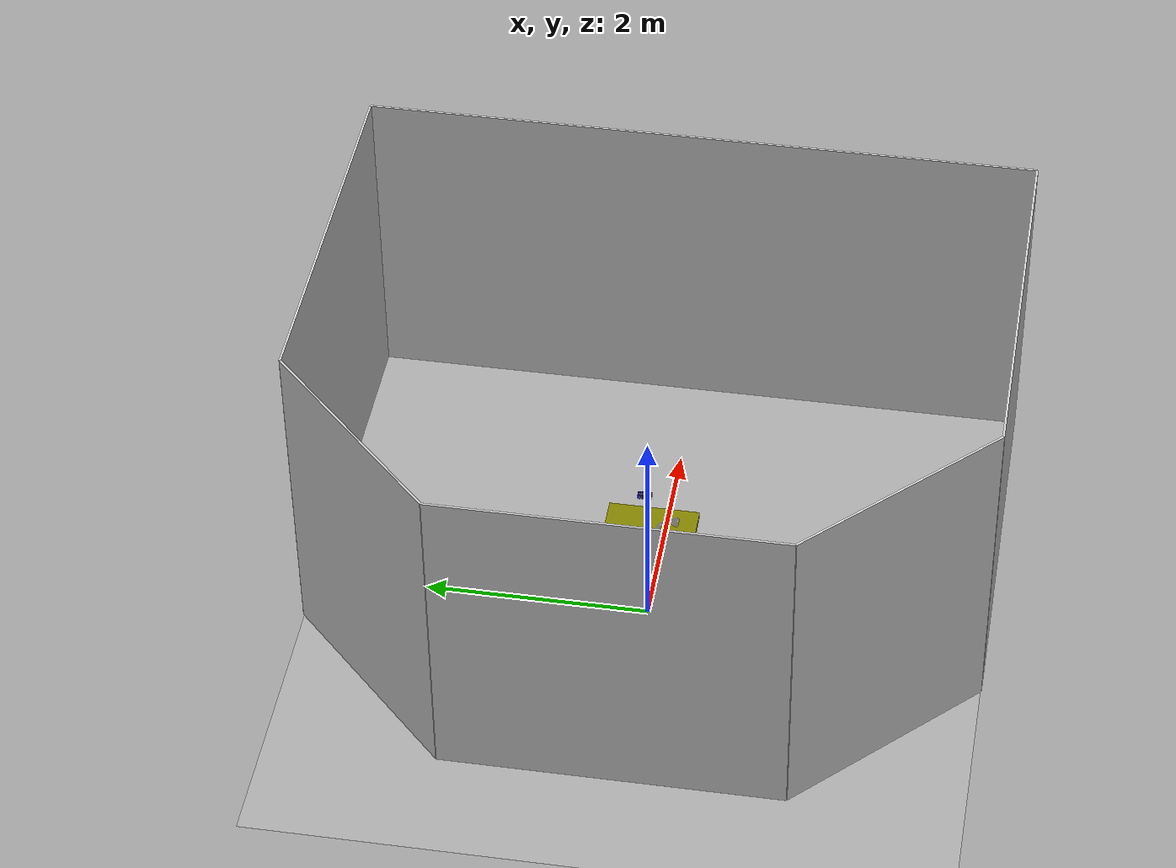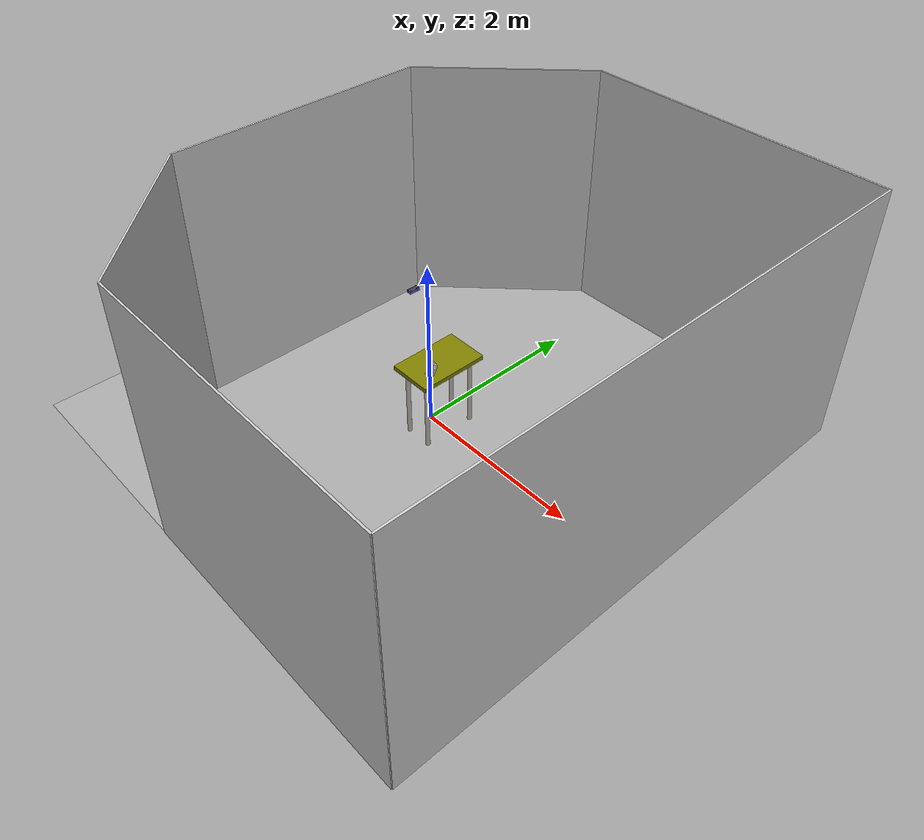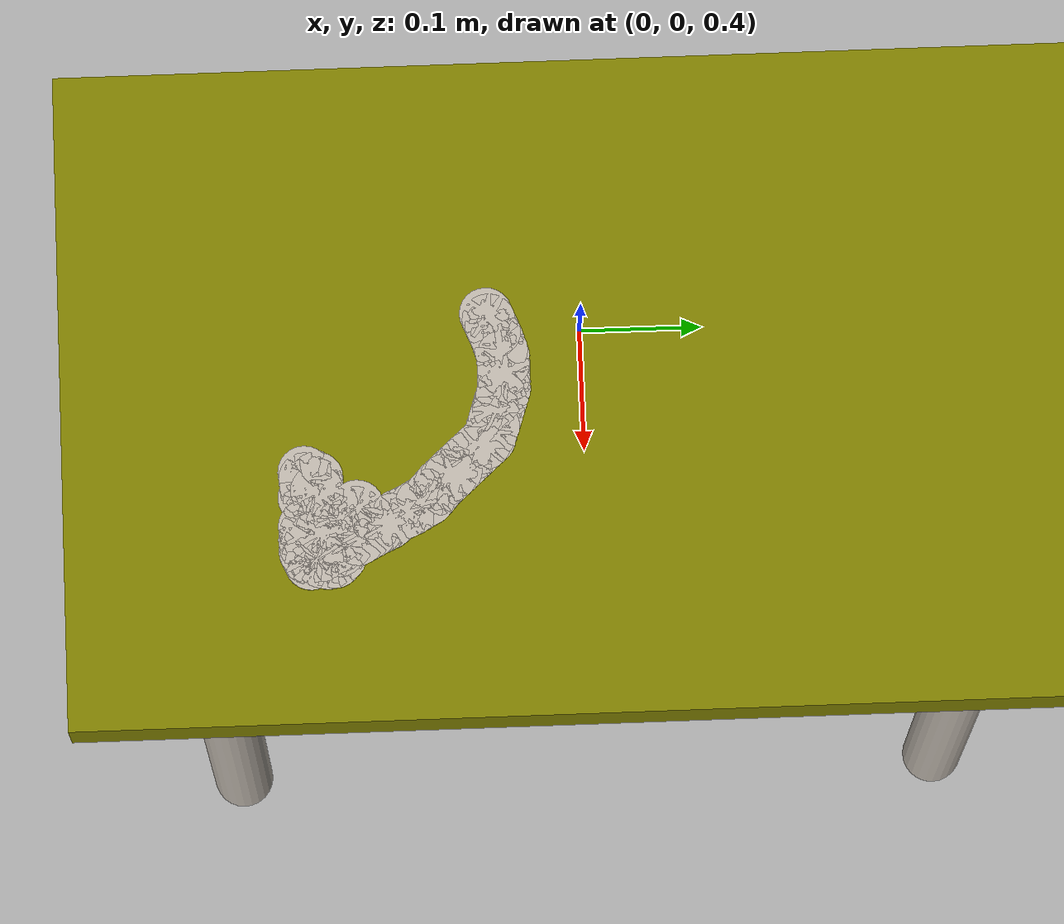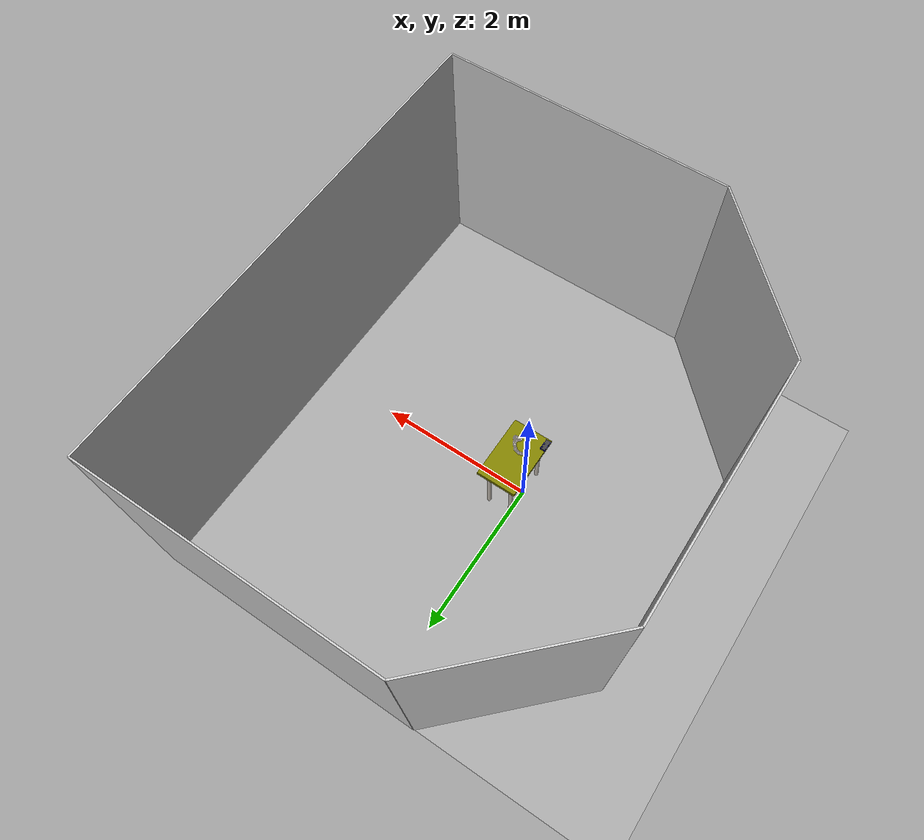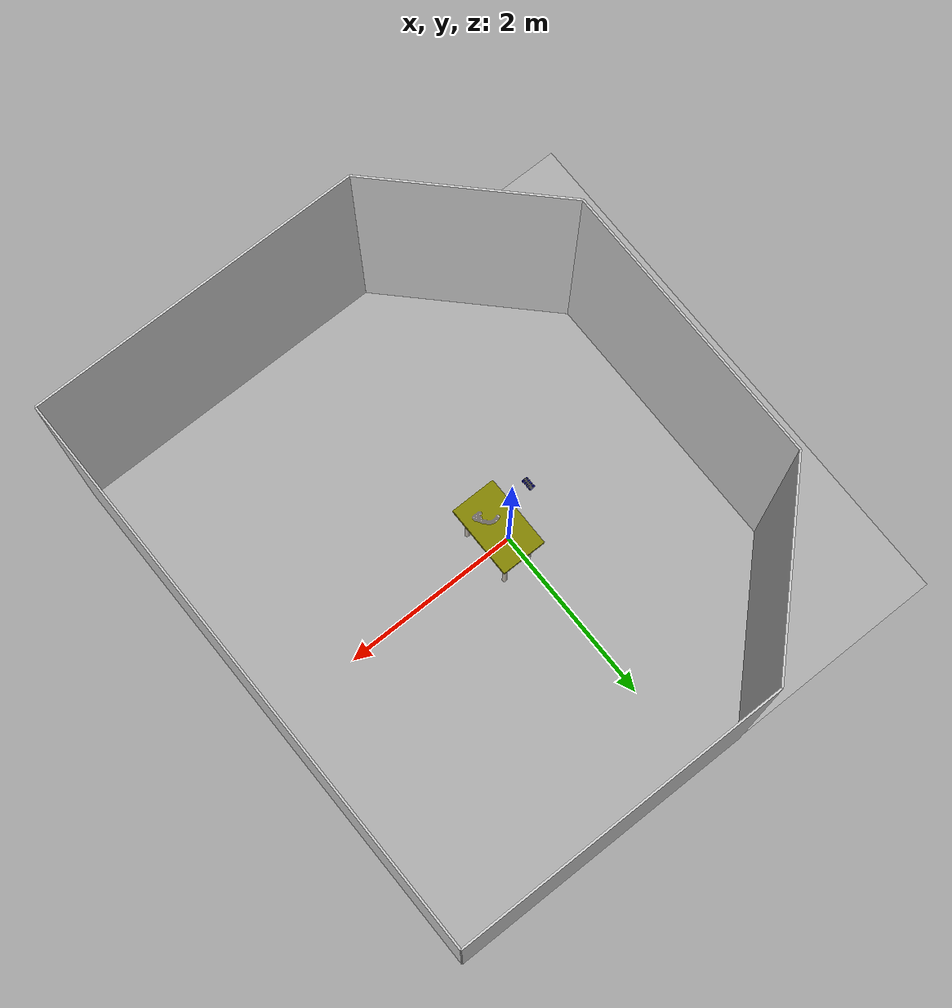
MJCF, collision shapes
<mujoco model="base">
  <compiler angle="radian" meshdir="meshes/"/>

  <option impratio="20" density="1.2" viscosity="2e-05" cone="elliptic"/>

  <size njmax="5000" nconmax="5000"/>

  <visual>
    <map znear="0.001"/>
  </visual>

  <asset>
    <texture type="skybox" colorspace="auto" builtin="gradient" rgb1="0.9 0.9 1" rgb2="0.2 0.3 0.4" width="256" height="1536"/>
    <texture type="2d" colorspace="sRGB" name="texplane" file="/home/cobot/Desktop/Raja/Projects/robosuite/robosuite/models/assets/textures/light-gray-floor-tile.png"/>
    <texture type="cube" colorspace="linear" name="tex-ceramic" file="/home/cobot/Desktop/Raja/Projects/robosuite/robosuite/models/assets/textures/ceramic.png"/>
    <texture type="cube" colorspace="linear" name="tex-steel-brushed" file="/home/cobot/Desktop/Raja/Projects/robosuite/robosuite/models/assets/textures/steel-brushed.png"/>
    <texture type="2d" colorspace="linear" name="tex-light-gray-plaster" file="/home/cobot/Desktop/Raja/Projects/robosuite/robosuite/models/assets/textures/light-gray-plaster.png"/>
    <texture type="cube" colorspace="auto" name="textable" builtin="flat" rgb1="0.5 0.5 0.5" width="512" height="3072"/>
    <texture type="cube" colorspace="linear" name="dirt" file="/home/cobot/Desktop/Raja/Projects/robosuite/robosuite/models/assets/textures/dirt.png"/>
    <material name="floorplane" texture="texplane" texuniform="true" texrepeat="2 2" specular="0" shininess="0" reflectance="0.01"/>
    <material name="table_ceramic" texture="tex-ceramic" specular="0.2" shininess="0"/>
    <material name="table_legs_metal" texture="tex-steel-brushed" shininess="0.8" reflectance="0.8"/>
    <material name="walls_mat" texture="tex-light-gray-plaster" texuniform="true" texrepeat="3 3" specular="0.1" shininess="0.1"/>
    <material name="table_mat" texture="textable"/>
    <material name="dirt_mat" texture="dirt" specular="0" shininess="0"/>
    <material name="robot0_robot_grey" rgba="0.6 0.6 0.6 1"/>
    <material name="robot0_white"/>
    <material name="robot0_black" rgba="0.25 0.25 0.25 1"/>
    <material name="robot0_off_white" rgba="0.9 0.92 0.93 1"/>
    <mesh name="robot0_base_link" file="/home/cobot/Desktop/Raja/Projects/robosuite/robosuite/models/assets/robots/nero/meshes/base_link.stl"/>
    <mesh name="robot0_link1" file="/home/cobot/Desktop/Raja/Projects/robosuite/robosuite/models/assets/robots/nero/meshes/link1.stl"/>
    <mesh name="robot0_link2" file="/home/cobot/Desktop/Raja/Projects/robosuite/robosuite/models/assets/robots/nero/meshes/link2.stl"/>
    <mesh name="robot0_link3" file="/home/cobot/Desktop/Raja/Projects/robosuite/robosuite/models/assets/robots/nero/meshes/link3.stl"/>
    <mesh name="robot0_link4" file="/home/cobot/Desktop/Raja/Projects/robosuite/robosuite/models/assets/robots/nero/meshes/link4.stl"/>
    <mesh name="robot0_link5" file="/home/cobot/Desktop/Raja/Projects/robosuite/robosuite/models/assets/robots/nero/meshes/link5.stl"/>
    <mesh name="robot0_link6" file="/home/cobot/Desktop/Raja/Projects/robosuite/robosuite/models/assets/robots/nero/meshes/link6.stl"/>
    <mesh name="robot0_link7" file="/home/cobot/Desktop/Raja/Projects/robosuite/robosuite/models/assets/robots/nero/meshes/link7.stl"/>
  </asset>

  <worldbody>
    <geom name="floor" size="3 3 0.125" type="plane" group="1" material="floorplane"/>
    <geom name="wall_leftcorner_visual" size="1.06 1.5 0.01" pos="-1.25 2.25 1.5" quat="0.653281 0.653281 0.270598 0.270598" type="box" contype="0" conaffinity="0" group="1" material="walls_mat"/>
    <geom name="wall_rightcorner_visual" size="1.06 1.5 0.01" pos="-1.25 -2.25 1.5" quat="0.653281 0.653281 -0.270598 -0.270598" type="box" contype="0" conaffinity="0" group="1" material="walls_mat"/>
    <geom name="wall_left_visual" size="1.75 1.5 0.01" pos="1.25 3 1.5" quat="0.707107 0.707107 0 0" type="box" contype="0" conaffinity="0" group="1" material="walls_mat"/>
    <geom name="wall_right_visual" size="1.75 1.5 0.01" pos="1.25 -3 1.5" quat="0.707107 -0.707107 0 0" type="box" contype="0" conaffinity="0" group="1" material="walls_mat"/>
    <geom name="wall_rear_visual" size="1.5 1.5 0.01" pos="-2 0 1.5" quat="0.5 0.5 0.5 0.5" type="box" contype="0" conaffinity="0" group="1" material="walls_mat"/>
    <geom name="wall_front_visual" size="3 1.5 0.01" pos="3 0 1.5" quat="0.5 0.5 -0.5 -0.5" type="box" contype="0" conaffinity="0" group="1" material="walls_mat"/>
    <camera name="frontview" pos="1.6 0 1.45" quat="0.560842 0.430646 0.430646 0.560842"/>
    <camera name="topview" pos="-0.03 0 2" quat="-0.707107 0 0 0.707107"/>
    <camera name="agentview" pos="0.5 0 1.35" quat="0.653098 0.271041 0.271041 0.653098"/>
    <camera name="sideview" pos="-0.0565177 1.27612 1.48796" quat="0.00990507 0.00687796 0.591223 0.806418"/>
    <camera name="teleopview" pos="-0.3 0.1 1.2" quat="0.583833 0.399104 -0.399421 -0.583368"/>
    <light pos="1 1 1.5" dir="-0.19245 -0.19245 -0.96225" type="directional" castshadow="false"/>
    <body name="table" pos="0.15 0 0.875">
      <geom name="table_collision" size="0.25 0.4 0.025" type="box" friction="0.03" rgba="0.5 0.5 0 1"/>
      <geom name="table_visual" size="0.25 0.4 0.025" type="box" contype="0" conaffinity="0" group="1" material="table_ceramic"/>
      <geom name="table_leg1_visual" size="0.025 0.4375" pos="0.15 0.3 -0.4375" type="cylinder" contype="0" conaffinity="0" group="1" material="table_legs_metal"/>
      <geom name="table_leg2_visual" size="0.025 0.4375" pos="-0.15 0.3 -0.4375" type="cylinder" contype="0" conaffinity="0" group="1" material="table_legs_metal"/>
      <geom name="table_leg3_visual" size="0.025 0.4375" pos="-0.15 -0.3 -0.4375" type="cylinder" contype="0" conaffinity="0" group="1" material="table_legs_metal"/>
      <geom name="table_leg4_visual" size="0.025 0.4375" pos="0.15 -0.3 -0.4375" type="cylinder" contype="0" conaffinity="0" group="1" material="table_legs_metal"/>
      <site name="table_top" pos="0 0 0.025" size="0.001" rgba="0 0 0 0"/>
      <body name="contact0_main" pos="0.0874314 -0.180404 0.025">
        <geom name="contact0_g0_vis" size="0.02 0.001" type="cylinder" contype="0" conaffinity="0" group="1" mass="0" material="dirt_mat"/>
        <site name="contact0_default_site" pos="0 0 0" size="0.002" rgba="1 0 0 0"/>
      </body>
      <body name="contact1_main" pos="0.0922218 -0.181837 0.025">
        <geom name="contact1_g0_vis" size="0.02 0.001" type="cylinder" contype="0" conaffinity="0" group="1" mass="0" material="dirt_mat"/>
        <site name="contact1_default_site" pos="0 0 0" size="0.002" rgba="1 0 0 0"/>
      </body>
      <body name="contact2_main" pos="0.0944846 -0.186295 0.025">
        <geom name="contact2_g0_vis" size="0.02 0.001" type="cylinder" contype="0" conaffinity="0" group="1" mass="0" material="dirt_mat"/>
        <site name="contact2_default_site" pos="0 0 0" size="0.002" rgba="1 0 0 0"/>
      </body>
      <body name="contact3_main" pos="0.0967473 -0.190754 0.025">
        <geom name="contact3_g0_vis" size="0.02 0.001" type="cylinder" contype="0" conaffinity="0" group="1" mass="0" material="dirt_mat"/>
        <site name="contact3_default_site" pos="0 0 0" size="0.002" rgba="1 0 0 0"/>
      </body>
      <body name="contact4_main" pos="0.09901 -0.195213 0.025">
        <geom name="contact4_g0_vis" size="0.02 0.001" type="cylinder" contype="0" conaffinity="0" group="1" mass="0" material="dirt_mat"/>
        <site name="contact4_default_site" pos="0 0 0" size="0.002" rgba="1 0 0 0"/>
      </body>
      <body name="contact5_main" pos="0.101273 -0.199671 0.025">
        <geom name="contact5_g0_vis" size="0.02 0.001" type="cylinder" contype="0" conaffinity="0" group="1" mass="0" material="dirt_mat"/>
        <site name="contact5_default_site" pos="0 0 0" size="0.002" rgba="1 0 0 0"/>
      </body>
      <body name="contact6_main" pos="0.103535 -0.20413 0.025">
        <geom name="contact6_g0_vis" size="0.02 0.001" type="cylinder" contype="0" conaffinity="0" group="1" mass="0" material="dirt_mat"/>
        <site name="contact6_default_site" pos="0 0 0" size="0.002" rgba="1 0 0 0"/>
      </body>
      <body name="contact7_main" pos="0.106744 -0.207965 0.025">
        <geom name="contact7_g0_vis" size="0.02 0.001" type="cylinder" contype="0" conaffinity="0" group="1" mass="0" material="dirt_mat"/>
        <site name="contact7_default_site" pos="0 0 0" size="0.002" rgba="1 0 0 0"/>
      </body>
      <body name="contact8_main" pos="0.109953 -0.211799 0.025">
        <geom name="contact8_g0_vis" size="0.02 0.001" type="cylinder" contype="0" conaffinity="0" group="1" mass="0" material="dirt_mat"/>
        <site name="contact8_default_site" pos="0 0 0" size="0.002" rgba="1 0 0 0"/>
      </body>
      <body name="contact9_main" pos="0.113162 -0.215634 0.025">
        <geom name="contact9_g0_vis" size="0.02 0.001" type="cylinder" contype="0" conaffinity="0" group="1" mass="0" material="dirt_mat"/>
        <site name="contact9_default_site" pos="0 0 0" size="0.002" rgba="1 0 0 0"/>
      </body>
      <body name="contact10_main" pos="0.116371 -0.219468 0.025">
        <geom name="contact10_g0_vis" size="0.02 0.001" type="cylinder" contype="0" conaffinity="0" group="1" mass="0" material="dirt_mat"/>
        <site name="contact10_default_site" pos="0 0 0" size="0.002" rgba="1 0 0 0"/>
      </body>
      <body name="contact11_main" pos="0.111395 -0.219965 0.025">
        <geom name="contact11_g0_vis" size="0.02 0.001" type="cylinder" contype="0" conaffinity="0" group="1" mass="0" material="dirt_mat"/>
        <site name="contact11_default_site" pos="0 0 0" size="0.002" rgba="1 0 0 0"/>
      </body>
      <body name="contact12_main" pos="0.106457 -0.219182 0.025">
        <geom name="contact12_g0_vis" size="0.02 0.001" type="cylinder" contype="0" conaffinity="0" group="1" mass="0" material="dirt_mat"/>
        <site name="contact12_default_site" pos="0 0 0" size="0.002" rgba="1 0 0 0"/>
      </body>
      <body name="contact13_main" pos="0.101507 -0.219886 0.025">
        <geom name="contact13_g0_vis" size="0.02 0.001" type="cylinder" contype="0" conaffinity="0" group="1" mass="0" material="dirt_mat"/>
        <site name="contact13_default_site" pos="0 0 0" size="0.002" rgba="1 0 0 0"/>
      </body>
      <body name="contact14_main" pos="0.0973254 -0.217144 0.025">
        <geom name="contact14_g0_vis" size="0.02 0.001" type="cylinder" contype="0" conaffinity="0" group="1" mass="0" material="dirt_mat"/>
        <site name="contact14_default_site" pos="0 0 0" size="0.002" rgba="1 0 0 0"/>
      </body>
      <body name="contact15_main" pos="0.0931442 -0.214402 0.025">
        <geom name="contact15_g0_vis" size="0.02 0.001" type="cylinder" contype="0" conaffinity="0" group="1" mass="0" material="dirt_mat"/>
        <site name="contact15_default_site" pos="0 0 0" size="0.002" rgba="1 0 0 0"/>
      </body>
      <body name="contact16_main" pos="0.088963 -0.21166 0.025">
        <geom name="contact16_g0_vis" size="0.02 0.001" type="cylinder" contype="0" conaffinity="0" group="1" mass="0" material="dirt_mat"/>
        <site name="contact16_default_site" pos="0 0 0" size="0.002" rgba="1 0 0 0"/>
      </body>
      <body name="contact17_main" pos="0.0847818 -0.208919 0.025">
        <geom name="contact17_g0_vis" size="0.02 0.001" type="cylinder" contype="0" conaffinity="0" group="1" mass="0" material="dirt_mat"/>
        <site name="contact17_default_site" pos="0 0 0" size="0.002" rgba="1 0 0 0"/>
      </body>
      <body name="contact18_main" pos="0.0798122 -0.209468 0.025">
        <geom name="contact18_g0_vis" size="0.02 0.001" type="cylinder" contype="0" conaffinity="0" group="1" mass="0" material="dirt_mat"/>
        <site name="contact18_default_site" pos="0 0 0" size="0.002" rgba="1 0 0 0"/>
      </body>
      <body name="contact19_main" pos="0.0748425 -0.210018 0.025">
        <geom name="contact19_g0_vis" size="0.02 0.001" type="cylinder" contype="0" conaffinity="0" group="1" mass="0" material="dirt_mat"/>
        <site name="contact19_default_site" pos="0 0 0" size="0.002" rgba="1 0 0 0"/>
      </body>
      <body name="contact20_main" pos="0.0698429 -0.21008 0.025">
        <geom name="contact20_g0_vis" size="0.02 0.001" type="cylinder" contype="0" conaffinity="0" group="1" mass="0" material="dirt_mat"/>
        <site name="contact20_default_site" pos="0 0 0" size="0.002" rgba="1 0 0 0"/>
      </body>
      <body name="contact21_main" pos="0.0648433 -0.210141 0.025">
        <geom name="contact21_g0_vis" size="0.02 0.001" type="cylinder" contype="0" conaffinity="0" group="1" mass="0" material="dirt_mat"/>
        <site name="contact21_default_site" pos="0 0 0" size="0.002" rgba="1 0 0 0"/>
      </body>
      <body name="contact22_main" pos="0.0625099 -0.214563 0.025">
        <geom name="contact22_g0_vis" size="0.02 0.001" type="cylinder" contype="0" conaffinity="0" group="1" mass="0" material="dirt_mat"/>
        <site name="contact22_default_site" pos="0 0 0" size="0.002" rgba="1 0 0 0"/>
      </body>
      <body name="contact23_main" pos="0.0601765 -0.218986 0.025">
        <geom name="contact23_g0_vis" size="0.02 0.001" type="cylinder" contype="0" conaffinity="0" group="1" mass="0" material="dirt_mat"/>
        <site name="contact23_default_site" pos="0 0 0" size="0.002" rgba="1 0 0 0"/>
      </body>
      <body name="contact24_main" pos="0.0651549 -0.218521 0.025">
        <geom name="contact24_g0_vis" size="0.02 0.001" type="cylinder" contype="0" conaffinity="0" group="1" mass="0" material="dirt_mat"/>
        <site name="contact24_default_site" pos="0 0 0" size="0.002" rgba="1 0 0 0"/>
      </body>
      <body name="contact25_main" pos="0.0701333 -0.218057 0.025">
        <geom name="contact25_g0_vis" size="0.02 0.001" type="cylinder" contype="0" conaffinity="0" group="1" mass="0" material="dirt_mat"/>
        <site name="contact25_default_site" pos="0 0 0" size="0.002" rgba="1 0 0 0"/>
      </body>
      <body name="contact26_main" pos="0.0751117 -0.217592 0.025">
        <geom name="contact26_g0_vis" size="0.02 0.001" type="cylinder" contype="0" conaffinity="0" group="1" mass="0" material="dirt_mat"/>
        <site name="contact26_default_site" pos="0 0 0" size="0.002" rgba="1 0 0 0"/>
      </body>
      <body name="contact27_main" pos="0.0797482 -0.219464 0.025">
        <geom name="contact27_g0_vis" size="0.02 0.001" type="cylinder" contype="0" conaffinity="0" group="1" mass="0" material="dirt_mat"/>
        <site name="contact27_default_site" pos="0 0 0" size="0.002" rgba="1 0 0 0"/>
      </body>
      <body name="contact28_main" pos="0.0830568 -0.215715 0.025">
        <geom name="contact28_g0_vis" size="0.02 0.001" type="cylinder" contype="0" conaffinity="0" group="1" mass="0" material="dirt_mat"/>
        <site name="contact28_default_site" pos="0 0 0" size="0.002" rgba="1 0 0 0"/>
      </body>
      <body name="contact29_main" pos="0.0863655 -0.211967 0.025">
        <geom name="contact29_g0_vis" size="0.02 0.001" type="cylinder" contype="0" conaffinity="0" group="1" mass="0" material="dirt_mat"/>
        <site name="contact29_default_site" pos="0 0 0" size="0.002" rgba="1 0 0 0"/>
      </body>
      <body name="contact30_main" pos="0.0896741 -0.208218 0.025">
        <geom name="contact30_g0_vis" size="0.02 0.001" type="cylinder" contype="0" conaffinity="0" group="1" mass="0" material="dirt_mat"/>
        <site name="contact30_default_site" pos="0 0 0" size="0.002" rgba="1 0 0 0"/>
      </body>
      <body name="contact31_main" pos="0.0929827 -0.204469 0.025">
        <geom name="contact31_g0_vis" size="0.02 0.001" type="cylinder" contype="0" conaffinity="0" group="1" mass="0" material="dirt_mat"/>
        <site name="contact31_default_site" pos="0 0 0" size="0.002" rgba="1 0 0 0"/>
      </body>
      <body name="contact32_main" pos="0.0962914 -0.20072 0.025">
        <geom name="contact32_g0_vis" size="0.02 0.001" type="cylinder" contype="0" conaffinity="0" group="1" mass="0" material="dirt_mat"/>
        <site name="contact32_default_site" pos="0 0 0" size="0.002" rgba="1 0 0 0"/>
      </body>
      <body name="contact33_main" pos="0.1011 -0.199351 0.025">
        <geom name="contact33_g0_vis" size="0.02 0.001" type="cylinder" contype="0" conaffinity="0" group="1" mass="0" material="dirt_mat"/>
        <site name="contact33_default_site" pos="0 0 0" size="0.002" rgba="1 0 0 0"/>
      </body>
      <body name="contact34_main" pos="0.105909 -0.197981 0.025">
        <geom name="contact34_g0_vis" size="0.02 0.001" type="cylinder" contype="0" conaffinity="0" group="1" mass="0" material="dirt_mat"/>
        <site name="contact34_default_site" pos="0 0 0" size="0.002" rgba="1 0 0 0"/>
      </body>
      <body name="contact35_main" pos="0.110717 -0.196611 0.025">
        <geom name="contact35_g0_vis" size="0.02 0.001" type="cylinder" contype="0" conaffinity="0" group="1" mass="0" material="dirt_mat"/>
        <site name="contact35_default_site" pos="0 0 0" size="0.002" rgba="1 0 0 0"/>
      </body>
      <body name="contact36_main" pos="0.115526 -0.195241 0.025">
        <geom name="contact36_g0_vis" size="0.02 0.001" type="cylinder" contype="0" conaffinity="0" group="1" mass="0" material="dirt_mat"/>
        <site name="contact36_default_site" pos="0 0 0" size="0.002" rgba="1 0 0 0"/>
      </body>
      <body name="contact37_main" pos="0.120513 -0.194878 0.025">
        <geom name="contact37_g0_vis" size="0.02 0.001" type="cylinder" contype="0" conaffinity="0" group="1" mass="0" material="dirt_mat"/>
        <site name="contact37_default_site" pos="0 0 0" size="0.002" rgba="1 0 0 0"/>
      </body>
      <body name="contact38_main" pos="0.1255 -0.194516 0.025">
        <geom name="contact38_g0_vis" size="0.02 0.001" type="cylinder" contype="0" conaffinity="0" group="1" mass="0" material="dirt_mat"/>
        <site name="contact38_default_site" pos="0 0 0" size="0.002" rgba="1 0 0 0"/>
      </body>
      <body name="contact39_main" pos="0.129027 -0.198059 0.025">
        <geom name="contact39_g0_vis" size="0.02 0.001" type="cylinder" contype="0" conaffinity="0" group="1" mass="0" material="dirt_mat"/>
        <site name="contact39_default_site" pos="0 0 0" size="0.002" rgba="1 0 0 0"/>
      </body>
      <body name="contact40_main" pos="0.129801 -0.202999 0.025">
        <geom name="contact40_g0_vis" size="0.02 0.001" type="cylinder" contype="0" conaffinity="0" group="1" mass="0" material="dirt_mat"/>
        <site name="contact40_default_site" pos="0 0 0" size="0.002" rgba="1 0 0 0"/>
      </body>
      <body name="contact41_main" pos="0.128547 -0.207839 0.025">
        <geom name="contact41_g0_vis" size="0.02 0.001" type="cylinder" contype="0" conaffinity="0" group="1" mass="0" material="dirt_mat"/>
        <site name="contact41_default_site" pos="0 0 0" size="0.002" rgba="1 0 0 0"/>
      </body>
      <body name="contact42_main" pos="0.127293 -0.212679 0.025">
        <geom name="contact42_g0_vis" size="0.02 0.001" type="cylinder" contype="0" conaffinity="0" group="1" mass="0" material="dirt_mat"/>
        <site name="contact42_default_site" pos="0 0 0" size="0.002" rgba="1 0 0 0"/>
      </body>
      <body name="contact43_main" pos="0.124729 -0.216972 0.025">
        <geom name="contact43_g0_vis" size="0.02 0.001" type="cylinder" contype="0" conaffinity="0" group="1" mass="0" material="dirt_mat"/>
        <site name="contact43_default_site" pos="0 0 0" size="0.002" rgba="1 0 0 0"/>
      </body>
      <body name="contact44_main" pos="0.120678 -0.219903 0.025">
        <geom name="contact44_g0_vis" size="0.02 0.001" type="cylinder" contype="0" conaffinity="0" group="1" mass="0" material="dirt_mat"/>
        <site name="contact44_default_site" pos="0 0 0" size="0.002" rgba="1 0 0 0"/>
      </body>
      <body name="contact45_main" pos="0.125241 -0.217858 0.025">
        <geom name="contact45_g0_vis" size="0.02 0.001" type="cylinder" contype="0" conaffinity="0" group="1" mass="0" material="dirt_mat"/>
        <site name="contact45_default_site" pos="0 0 0" size="0.002" rgba="1 0 0 0"/>
      </body>
      <body name="contact46_main" pos="0.129803 -0.215812 0.025">
        <geom name="contact46_g0_vis" size="0.02 0.001" type="cylinder" contype="0" conaffinity="0" group="1" mass="0" material="dirt_mat"/>
        <site name="contact46_default_site" pos="0 0 0" size="0.002" rgba="1 0 0 0"/>
      </body>
      <body name="contact47_main" pos="0.126769 -0.211838 0.025">
        <geom name="contact47_g0_vis" size="0.02 0.001" type="cylinder" contype="0" conaffinity="0" group="1" mass="0" material="dirt_mat"/>
        <site name="contact47_default_site" pos="0 0 0" size="0.002" rgba="1 0 0 0"/>
      </body>
      <body name="contact48_main" pos="0.123736 -0.207863 0.025">
        <geom name="contact48_g0_vis" size="0.02 0.001" type="cylinder" contype="0" conaffinity="0" group="1" mass="0" material="dirt_mat"/>
        <site name="contact48_default_site" pos="0 0 0" size="0.002" rgba="1 0 0 0"/>
      </body>
      <body name="contact49_main" pos="0.120702 -0.203889 0.025">
        <geom name="contact49_g0_vis" size="0.02 0.001" type="cylinder" contype="0" conaffinity="0" group="1" mass="0" material="dirt_mat"/>
        <site name="contact49_default_site" pos="0 0 0" size="0.002" rgba="1 0 0 0"/>
      </body>
      <body name="contact50_main" pos="0.118594 -0.199355 0.025">
        <geom name="contact50_g0_vis" size="0.02 0.001" type="cylinder" contype="0" conaffinity="0" group="1" mass="0" material="dirt_mat"/>
        <site name="contact50_default_site" pos="0 0 0" size="0.002" rgba="1 0 0 0"/>
      </body>
      <body name="contact51_main" pos="0.117296 -0.194526 0.025">
        <geom name="contact51_g0_vis" size="0.02 0.001" type="cylinder" contype="0" conaffinity="0" group="1" mass="0" material="dirt_mat"/>
        <site name="contact51_default_site" pos="0 0 0" size="0.002" rgba="1 0 0 0"/>
      </body>
      <body name="contact52_main" pos="0.115998 -0.189698 0.025">
        <geom name="contact52_g0_vis" size="0.02 0.001" type="cylinder" contype="0" conaffinity="0" group="1" mass="0" material="dirt_mat"/>
        <site name="contact52_default_site" pos="0 0 0" size="0.002" rgba="1 0 0 0"/>
      </body>
      <body name="contact53_main" pos="0.1147 -0.184869 0.025">
        <geom name="contact53_g0_vis" size="0.02 0.001" type="cylinder" contype="0" conaffinity="0" group="1" mass="0" material="dirt_mat"/>
        <site name="contact53_default_site" pos="0 0 0" size="0.002" rgba="1 0 0 0"/>
      </body>
      <body name="contact54_main" pos="0.112418 -0.18042 0.025">
        <geom name="contact54_g0_vis" size="0.02 0.001" type="cylinder" contype="0" conaffinity="0" group="1" mass="0" material="dirt_mat"/>
        <site name="contact54_default_site" pos="0 0 0" size="0.002" rgba="1 0 0 0"/>
      </body>
      <body name="contact55_main" pos="0.110135 -0.175972 0.025">
        <geom name="contact55_g0_vis" size="0.02 0.001" type="cylinder" contype="0" conaffinity="0" group="1" mass="0" material="dirt_mat"/>
        <site name="contact55_default_site" pos="0 0 0" size="0.002" rgba="1 0 0 0"/>
      </body>
      <body name="contact56_main" pos="0.107852 -0.171523 0.025">
        <geom name="contact56_g0_vis" size="0.02 0.001" type="cylinder" contype="0" conaffinity="0" group="1" mass="0" material="dirt_mat"/>
        <site name="contact56_default_site" pos="0 0 0" size="0.002" rgba="1 0 0 0"/>
      </body>
      <body name="contact57_main" pos="0.10557 -0.167075 0.025">
        <geom name="contact57_g0_vis" size="0.02 0.001" type="cylinder" contype="0" conaffinity="0" group="1" mass="0" material="dirt_mat"/>
        <site name="contact57_default_site" pos="0 0 0" size="0.002" rgba="1 0 0 0"/>
      </body>
      <body name="contact58_main" pos="0.103516 -0.162516 0.025">
        <geom name="contact58_g0_vis" size="0.02 0.001" type="cylinder" contype="0" conaffinity="0" group="1" mass="0" material="dirt_mat"/>
        <site name="contact58_default_site" pos="0 0 0" size="0.002" rgba="1 0 0 0"/>
      </body>
      <body name="contact59_main" pos="0.101462 -0.157957 0.025">
        <geom name="contact59_g0_vis" size="0.02 0.001" type="cylinder" contype="0" conaffinity="0" group="1" mass="0" material="dirt_mat"/>
        <site name="contact59_default_site" pos="0 0 0" size="0.002" rgba="1 0 0 0"/>
      </body>
      <body name="contact60_main" pos="0.0985021 -0.153928 0.025">
        <geom name="contact60_g0_vis" size="0.02 0.001" type="cylinder" contype="0" conaffinity="0" group="1" mass="0" material="dirt_mat"/>
        <site name="contact60_default_site" pos="0 0 0" size="0.002" rgba="1 0 0 0"/>
      </body>
      <body name="contact61_main" pos="0.0955422 -0.149898 0.025">
        <geom name="contact61_g0_vis" size="0.02 0.001" type="cylinder" contype="0" conaffinity="0" group="1" mass="0" material="dirt_mat"/>
        <site name="contact61_default_site" pos="0 0 0" size="0.002" rgba="1 0 0 0"/>
      </body>
      <body name="contact62_main" pos="0.0935764 -0.145301 0.025">
        <geom name="contact62_g0_vis" size="0.02 0.001" type="cylinder" contype="0" conaffinity="0" group="1" mass="0" material="dirt_mat"/>
        <site name="contact62_default_site" pos="0 0 0" size="0.002" rgba="1 0 0 0"/>
      </body>
      <body name="contact63_main" pos="0.0916106 -0.140703 0.025">
        <geom name="contact63_g0_vis" size="0.02 0.001" type="cylinder" contype="0" conaffinity="0" group="1" mass="0" material="dirt_mat"/>
        <site name="contact63_default_site" pos="0 0 0" size="0.002" rgba="1 0 0 0"/>
      </body>
      <body name="contact64_main" pos="0.0891747 -0.136337 0.025">
        <geom name="contact64_g0_vis" size="0.02 0.001" type="cylinder" contype="0" conaffinity="0" group="1" mass="0" material="dirt_mat"/>
        <site name="contact64_default_site" pos="0 0 0" size="0.002" rgba="1 0 0 0"/>
      </body>
      <body name="contact65_main" pos="0.0867389 -0.13197 0.025">
        <geom name="contact65_g0_vis" size="0.02 0.001" type="cylinder" contype="0" conaffinity="0" group="1" mass="0" material="dirt_mat"/>
        <site name="contact65_default_site" pos="0 0 0" size="0.002" rgba="1 0 0 0"/>
      </body>
      <body name="contact66_main" pos="0.084303 -0.127604 0.025">
        <geom name="contact66_g0_vis" size="0.02 0.001" type="cylinder" contype="0" conaffinity="0" group="1" mass="0" material="dirt_mat"/>
        <site name="contact66_default_site" pos="0 0 0" size="0.002" rgba="1 0 0 0"/>
      </body>
      <body name="contact67_main" pos="0.0806083 -0.124235 0.025">
        <geom name="contact67_g0_vis" size="0.02 0.001" type="cylinder" contype="0" conaffinity="0" group="1" mass="0" material="dirt_mat"/>
        <site name="contact67_default_site" pos="0 0 0" size="0.002" rgba="1 0 0 0"/>
      </body>
      <body name="contact68_main" pos="0.0769135 -0.120866 0.025">
        <geom name="contact68_g0_vis" size="0.02 0.001" type="cylinder" contype="0" conaffinity="0" group="1" mass="0" material="dirt_mat"/>
        <site name="contact68_default_site" pos="0 0 0" size="0.002" rgba="1 0 0 0"/>
      </body>
      <body name="contact69_main" pos="0.0732188 -0.117497 0.025">
        <geom name="contact69_g0_vis" size="0.02 0.001" type="cylinder" contype="0" conaffinity="0" group="1" mass="0" material="dirt_mat"/>
        <site name="contact69_default_site" pos="0 0 0" size="0.002" rgba="1 0 0 0"/>
      </body>
      <body name="contact70_main" pos="0.069886 -0.11377 0.025">
        <geom name="contact70_g0_vis" size="0.02 0.001" type="cylinder" contype="0" conaffinity="0" group="1" mass="0" material="dirt_mat"/>
        <site name="contact70_default_site" pos="0 0 0" size="0.002" rgba="1 0 0 0"/>
      </body>
      <body name="contact71_main" pos="0.0665532 -0.110043 0.025">
        <geom name="contact71_g0_vis" size="0.02 0.001" type="cylinder" contype="0" conaffinity="0" group="1" mass="0" material="dirt_mat"/>
        <site name="contact71_default_site" pos="0 0 0" size="0.002" rgba="1 0 0 0"/>
      </body>
      <body name="contact72_main" pos="0.0632204 -0.106315 0.025">
        <geom name="contact72_g0_vis" size="0.02 0.001" type="cylinder" contype="0" conaffinity="0" group="1" mass="0" material="dirt_mat"/>
        <site name="contact72_default_site" pos="0 0 0" size="0.002" rgba="1 0 0 0"/>
      </body>
      <body name="contact73_main" pos="0.0598875 -0.102588 0.025">
        <geom name="contact73_g0_vis" size="0.02 0.001" type="cylinder" contype="0" conaffinity="0" group="1" mass="0" material="dirt_mat"/>
        <site name="contact73_default_site" pos="0 0 0" size="0.002" rgba="1 0 0 0"/>
      </body>
      <body name="contact74_main" pos="0.0565547 -0.098861 0.025">
        <geom name="contact74_g0_vis" size="0.02 0.001" type="cylinder" contype="0" conaffinity="0" group="1" mass="0" material="dirt_mat"/>
        <site name="contact74_default_site" pos="0 0 0" size="0.002" rgba="1 0 0 0"/>
      </body>
      <body name="contact75_main" pos="0.0532219 -0.0951338 0.025">
        <geom name="contact75_g0_vis" size="0.02 0.001" type="cylinder" contype="0" conaffinity="0" group="1" mass="0" material="dirt_mat"/>
        <site name="contact75_default_site" pos="0 0 0" size="0.002" rgba="1 0 0 0"/>
      </body>
      <body name="contact76_main" pos="0.0498891 -0.0914065 0.025">
        <geom name="contact76_g0_vis" size="0.02 0.001" type="cylinder" contype="0" conaffinity="0" group="1" mass="0" material="dirt_mat"/>
        <site name="contact76_default_site" pos="0 0 0" size="0.002" rgba="1 0 0 0"/>
      </body>
      <body name="contact77_main" pos="0.0465563 -0.0876793 0.025">
        <geom name="contact77_g0_vis" size="0.02 0.001" type="cylinder" contype="0" conaffinity="0" group="1" mass="0" material="dirt_mat"/>
        <site name="contact77_default_site" pos="0 0 0" size="0.002" rgba="1 0 0 0"/>
      </body>
      <body name="contact78_main" pos="0.0432235 -0.083952 0.025">
        <geom name="contact78_g0_vis" size="0.02 0.001" type="cylinder" contype="0" conaffinity="0" group="1" mass="0" material="dirt_mat"/>
        <site name="contact78_default_site" pos="0 0 0" size="0.002" rgba="1 0 0 0"/>
      </body>
      <body name="contact79_main" pos="0.0398907 -0.0802248 0.025">
        <geom name="contact79_g0_vis" size="0.02 0.001" type="cylinder" contype="0" conaffinity="0" group="1" mass="0" material="dirt_mat"/>
        <site name="contact79_default_site" pos="0 0 0" size="0.002" rgba="1 0 0 0"/>
      </body>
      <body name="contact80_main" pos="0.0351456 -0.0786486 0.025">
        <geom name="contact80_g0_vis" size="0.02 0.001" type="cylinder" contype="0" conaffinity="0" group="1" mass="0" material="dirt_mat"/>
        <site name="contact80_default_site" pos="0 0 0" size="0.002" rgba="1 0 0 0"/>
      </body>
      <body name="contact81_main" pos="0.0304005 -0.0770725 0.025">
        <geom name="contact81_g0_vis" size="0.02 0.001" type="cylinder" contype="0" conaffinity="0" group="1" mass="0" material="dirt_mat"/>
        <site name="contact81_default_site" pos="0 0 0" size="0.002" rgba="1 0 0 0"/>
      </body>
      <body name="contact82_main" pos="0.0256554 -0.0754963 0.025">
        <geom name="contact82_g0_vis" size="0.02 0.001" type="cylinder" contype="0" conaffinity="0" group="1" mass="0" material="dirt_mat"/>
        <site name="contact82_default_site" pos="0 0 0" size="0.002" rgba="1 0 0 0"/>
      </body>
      <body name="contact83_main" pos="0.0209104 -0.0739201 0.025">
        <geom name="contact83_g0_vis" size="0.02 0.001" type="cylinder" contype="0" conaffinity="0" group="1" mass="0" material="dirt_mat"/>
        <site name="contact83_default_site" pos="0 0 0" size="0.002" rgba="1 0 0 0"/>
      </body>
      <body name="contact84_main" pos="0.0161653 -0.072344 0.025">
        <geom name="contact84_g0_vis" size="0.02 0.001" type="cylinder" contype="0" conaffinity="0" group="1" mass="0" material="dirt_mat"/>
        <site name="contact84_default_site" pos="0 0 0" size="0.002" rgba="1 0 0 0"/>
      </body>
      <body name="contact85_main" pos="0.0114202 -0.0707678 0.025">
        <geom name="contact85_g0_vis" size="0.02 0.001" type="cylinder" contype="0" conaffinity="0" group="1" mass="0" material="dirt_mat"/>
        <site name="contact85_default_site" pos="0 0 0" size="0.002" rgba="1 0 0 0"/>
      </body>
      <body name="contact86_main" pos="0.00667515 -0.0691916 0.025">
        <geom name="contact86_g0_vis" size="0.02 0.001" type="cylinder" contype="0" conaffinity="0" group="1" mass="0" material="dirt_mat"/>
        <site name="contact86_default_site" pos="0 0 0" size="0.002" rgba="1 0 0 0"/>
      </body>
      <body name="contact87_main" pos="0.00193008 -0.0676155 0.025">
        <geom name="contact87_g0_vis" size="0.02 0.001" type="cylinder" contype="0" conaffinity="0" group="1" mass="0" material="dirt_mat"/>
        <site name="contact87_default_site" pos="0 0 0" size="0.002" rgba="1 0 0 0"/>
      </body>
      <body name="contact88_main" pos="-0.00306987 -0.0675928 0.025">
        <geom name="contact88_g0_vis" size="0.02 0.001" type="cylinder" contype="0" conaffinity="0" group="1" mass="0" material="dirt_mat"/>
        <site name="contact88_default_site" pos="0 0 0" size="0.002" rgba="1 0 0 0"/>
      </body>
      <body name="contact89_main" pos="-0.00806982 -0.0675701 0.025">
        <geom name="contact89_g0_vis" size="0.02 0.001" type="cylinder" contype="0" conaffinity="0" group="1" mass="0" material="dirt_mat"/>
        <site name="contact89_default_site" pos="0 0 0" size="0.002" rgba="1 0 0 0"/>
      </body>
      <body name="contact90_main" pos="-0.0130698 -0.0675474 0.025">
        <geom name="contact90_g0_vis" size="0.02 0.001" type="cylinder" contype="0" conaffinity="0" group="1" mass="0" material="dirt_mat"/>
        <site name="contact90_default_site" pos="0 0 0" size="0.002" rgba="1 0 0 0"/>
      </body>
      <body name="contact91_main" pos="-0.0180697 -0.0675247 0.025">
        <geom name="contact91_g0_vis" size="0.02 0.001" type="cylinder" contype="0" conaffinity="0" group="1" mass="0" material="dirt_mat"/>
        <site name="contact91_default_site" pos="0 0 0" size="0.002" rgba="1 0 0 0"/>
      </body>
      <body name="contact92_main" pos="-0.0230697 -0.067502 0.025">
        <geom name="contact92_g0_vis" size="0.02 0.001" type="cylinder" contype="0" conaffinity="0" group="1" mass="0" material="dirt_mat"/>
        <site name="contact92_default_site" pos="0 0 0" size="0.002" rgba="1 0 0 0"/>
      </body>
      <body name="contact93_main" pos="-0.0278534 -0.0689566 0.025">
        <geom name="contact93_g0_vis" size="0.02 0.001" type="cylinder" contype="0" conaffinity="0" group="1" mass="0" material="dirt_mat"/>
        <site name="contact93_default_site" pos="0 0 0" size="0.002" rgba="1 0 0 0"/>
      </body>
      <body name="contact94_main" pos="-0.0326371 -0.0704112 0.025">
        <geom name="contact94_g0_vis" size="0.02 0.001" type="cylinder" contype="0" conaffinity="0" group="1" mass="0" material="dirt_mat"/>
        <site name="contact94_default_site" pos="0 0 0" size="0.002" rgba="1 0 0 0"/>
      </body>
      <body name="contact95_main" pos="-0.0374209 -0.0718658 0.025">
        <geom name="contact95_g0_vis" size="0.02 0.001" type="cylinder" contype="0" conaffinity="0" group="1" mass="0" material="dirt_mat"/>
        <site name="contact95_default_site" pos="0 0 0" size="0.002" rgba="1 0 0 0"/>
      </body>
      <body name="contact96_main" pos="-0.0420531 -0.0737479 0.025">
        <geom name="contact96_g0_vis" size="0.02 0.001" type="cylinder" contype="0" conaffinity="0" group="1" mass="0" material="dirt_mat"/>
        <site name="contact96_default_site" pos="0 0 0" size="0.002" rgba="1 0 0 0"/>
      </body>
      <body name="contact97_main" pos="-0.0466854 -0.07563 0.025">
        <geom name="contact97_g0_vis" size="0.02 0.001" type="cylinder" contype="0" conaffinity="0" group="1" mass="0" material="dirt_mat"/>
        <site name="contact97_default_site" pos="0 0 0" size="0.002" rgba="1 0 0 0"/>
      </body>
      <body name="contact98_main" pos="-0.0513176 -0.077512 0.025">
        <geom name="contact98_g0_vis" size="0.02 0.001" type="cylinder" contype="0" conaffinity="0" group="1" mass="0" material="dirt_mat"/>
        <site name="contact98_default_site" pos="0 0 0" size="0.002" rgba="1 0 0 0"/>
      </body>
      <body name="contact99_main" pos="-0.0559499 -0.0793941 0.025">
        <geom name="contact99_g0_vis" size="0.02 0.001" type="cylinder" contype="0" conaffinity="0" group="1" mass="0" material="dirt_mat"/>
        <site name="contact99_default_site" pos="0 0 0" size="0.002" rgba="1 0 0 0"/>
      </body>
    </body>
    <body name="left_eef_target" pos="0 0 -1" mocap="true">
      <geom name="left_eef_target_box" size="0.05 0.05 0.05" type="box" contype="0" conaffinity="0" group="2" rgba="0.898 0.42 0.435 0.5"/>
      <geom name="left_eef_target_sphere" size="0.01" contype="0" conaffinity="0" group="2" rgba="0.898 0.42 0.435 0.8"/>
    </body>
    <body name="right_eef_target" pos="0 0 -1" mocap="true">
      <geom name="right_eef_target_box" size="0.05 0.05 0.05" type="box" contype="0" conaffinity="0" group="2" rgba="0.208 0.314 0.439 0.5"/>
      <geom name="right_eef_target_sphere" size="0.01" contype="0" conaffinity="0" group="2" rgba="0.208 0.314 0.439 0.8"/>
    </body>
    <body name="robot0_base_link" pos="-0.21 0 0.85" quat="0.000796327 0 0 -1">
      <inertial pos="-0.00319466 -5.46761e-05 0.0432176" quat="0.712681 0.00763931 0.0100067 0.701375" mass="1.06458" diaginertia="0.00114403 0.00102664 0.000908653"/>
      <geom name="robot0_g0_vis" type="mesh" contype="0" conaffinity="0" group="1" material="robot0_robot_grey" mesh="robot0_base_link"/>
      <site name="robot0_right_center" pos="0 0 0" size="0.01" group="2" rgba="1 0.3 0.3 -1"/>
      <body name="robot0_link1" pos="0 0 0.138">
        <inertial pos="-0.000768106 -5.71803e-05 -0.00686373" quat="0.998496 0.0243284 -0.0474034 0.0129308" mass="0.767105" diaginertia="0.000668361 0.000545022 0.000513619"/>
        <joint name="robot0_joint1" pos="0 0 0" axis="0 0 1" range="-2.70526 2.70526" actuatorfrcrange="-24 24" armature="5" damping="0.04" frictionloss="0.1"/>
        <geom name="robot0_g1_vis" type="mesh" contype="0" conaffinity="0" group="1" material="robot0_robot_grey" mesh="robot0_link1"/>
        <body name="robot0_link2" quat="1.89469e-08 -1.89469e-08 0.707107 -0.707107">
          <inertial pos="0.000796867 -0.0789033 0.00111849" quat="0.724173 0.689546 -0.00281155 -0.00963045" mass="0.693819" diaginertia="0.00201137 0.00182229 0.000632162"/>
          <joint name="robot0_joint2" pos="0 0 0" axis="0 0 1" range="-1.78 1.78" actuatorfrcrange="-24 24" armature="2.5" damping="0.04" frictionloss="0.1"/>
          <geom name="robot0_g2_vis" type="mesh" contype="0" conaffinity="0" group="1" material="robot0_robot_grey" mesh="robot0_link2"/>
          <body name="robot0_link3" pos="0 -0.31 0" quat="-1.37922e-08 -1.37922e-08 -0.707107 0.707107">
            <inertial pos="0.000145134 -0.00121379 -0.0486114" quat="0.999978 -0.00572699 -0.000503892 -0.00336231" mass="0.672465" diaginertia="0.0034323 0.00338703 0.000288126"/>
            <joint name="robot0_joint3" pos="0 0 0" axis="0 0 1" range="-2.75 2.75" actuatorfrcrange="-18 18" armature="1.66667" damping="0.02" frictionloss="0.1"/>
            <geom name="robot0_g3_vis" type="mesh" contype="0" conaffinity="0" group="1" material="robot0_robot_grey" mesh="robot0_link3"/>
            <body name="robot0_link4" quat="-1.37922e-08 -1.37922e-08 -0.707107 0.707107">
              <inertial pos="-0.000313346 -0.0567519 0.000760561" quat="0.743967 0.668141 -0.00555621 -0.00837616" mass="0.484514" diaginertia="0.000503972 0.000403451 0.00023296"/>
              <joint name="robot0_joint4" pos="0 0 0" axis="0 0 1" range="-1.05 2.22" actuatorfrcrange="-18 18" armature="1.25" damping="0.02" frictionloss="0.1"/>
              <geom name="robot0_g4_vis" type="mesh" contype="0" conaffinity="0" group="1" material="robot0_robot_grey" mesh="robot0_link4"/>
              <body name="robot0_link5" pos="0 -0.27001 0" quat="0.5 0.5 -0.5 0.5">
                <inertial pos="0.00265591 0.00201196 -0.116209" quat="0.994383 -0.0299767 0.0135244 0.100607" mass="0.583684" diaginertia="0.000897188 0.000859677 0.000214923"/>
                <joint name="robot0_joint5" pos="0 0 0" axis="0 0 1" range="-2.75 2.75" actuatorfrcrange="-8 8" armature="1" damping="0.01" frictionloss="0.1"/>
                <geom name="robot0_g5_vis" type="mesh" contype="0" conaffinity="0" group="1" material="robot0_robot_grey" mesh="robot0_link5"/>
                <body name="robot0_link6" quat="0.5 0.5 -0.5 0.5">
                  <inertial pos="9.50151e-05 0.00107831 -0.00019111" quat="0.708463 0.705104 -0.0268147 0.0137484" mass="0.314041" diaginertia="6.02857e-05 5.75589e-05 4.69904e-05"/>
                  <joint name="robot0_joint6" pos="0 0 0" axis="0 0 1" range="-0.77 0.95" actuatorfrcrange="-8 8" armature="0.833333" damping="0.01" frictionloss="0.1"/>
                  <geom name="robot0_g6_vis" type="mesh" contype="0" conaffinity="0" group="1" material="robot0_robot_grey" mesh="robot0_link6"/>
                  <body name="robot0_link7" pos="0 -0.0235 0" quat="0.707107 0.707107 0 0">
                    <inertial pos="-0.00014 -0.0001 -0.00275" quat="0.5 0.5 -0.5 0.5" mass="1e-06" diaginertia="2e-07 1.1e-07 1.1e-07"/>
                    <joint name="robot0_joint7" pos="0 0 0" axis="0 0 1" range="-1.5708 1.5708" actuatorfrcrange="-8 8" armature="0.714286" damping="0.01" frictionloss="0.1"/>
                    <geom name="robot0_g7_vis" type="mesh" contype="0" conaffinity="0" group="1" material="robot0_robot_grey" mesh="robot0_link7"/>
                    <body name="robot0_right_hand">
                      <inertial pos="0 0 0" mass="0.5" diaginertia="0.05 0.05 0.05"/>
                      <camera name="robot0_eye_in_hand" pos="0 0.1 0" quat="0 -0.707107 0 0.707107" fovy="75"/>
                      <body name="gripper0_right_wiping_gripper" pos="0.055 0 -0.035" quat="0.707107 0 0.707107 0">
                        <inertial pos="0 0 0" mass="0.03" diaginertia="0.01 0.01 0.01"/>
                        <geom name="gripper0_right_wiping_surface_vis" size="0.06 0.025 0.015" type="box" contype="0" conaffinity="0" group="1" rgba="0.25 0.25 0.25 1"/>
                        <geom name="gripper0_right_wiping_surface1a" size="0.005 0.01 0.015" pos="0.055 0.02 0" type="box" friction="0.001" solmix="10000" solref="0.05" solimp="0.2 0.9 0.01" rgba="0 0 0.5 1"/>
                        <geom name="gripper0_right_wiping_surface1b" size="0.005 0.01 0.015" pos="0.04 0.02 0" type="box" friction="0.001" solmix="10000" solref="0.05" solimp="0.2 0.9 0.01" rgba="0 0 0.5 1"/>
                        <geom name="gripper0_right_wiping_surface1c" size="0.005 0.01 0.015" pos="0.02 0.02 0" type="box" friction="0.001" solmix="10000" solref="0.05" solimp="0.2 0.9 0.01" rgba="0 0 0.5 1"/>
                        <geom name="gripper0_right_wiping_surface1d" size="0.005 0.01 0.015" pos="0 0.02 0" type="box" friction="0.001" solmix="10000" solref="0.05" solimp="0.2 0.9 0.01" rgba="0 0 0.5 1"/>
                        <geom name="gripper0_right_wiping_surface1e" size="0.005 0.01 0.015" pos="-0.02 0.02 0" type="box" friction="0.001" solmix="10000" solref="0.05" solimp="0.2 0.9 0.01" rgba="0 0 0.5 1"/>
                        <geom name="gripper0_right_wiping_surface1f" size="0.005 0.01 0.015" pos="-0.04 0.02 0" type="box" friction="0.001" solmix="10000" solref="0.05" solimp="0.2 0.9 0.01" rgba="0 0 0.5 1"/>
                        <geom name="gripper0_right_wiping_surface1g" size="0.005 0.01 0.015" pos="-0.055 0.02 0" type="box" friction="0.001" solmix="10000" solref="0.05" solimp="0.2 0.9 0.01" rgba="0 0 0.5 1"/>
                        <geom name="gripper0_right_wiping_corner1" size="0.001" pos="0.06 0.025 0.015" friction="0.001" solmix="10000" solref="1 2" solimp="0 0.1 0.01" rgba="0 0 0.5 1"/>
                        <geom name="gripper0_right_wiping_surface1br" size="0.001" pos="0.04 0.025 0.015" friction="0.001" solmix="10000" solref="1 2" solimp="0 0.1 0.01" rgba="0 0 0.5 1"/>
                        <geom name="gripper0_right_wiping_surface1cr" size="0.001" pos="0.02 0.025 0.015" friction="0.001" solmix="10000" solref="1 2" solimp="0 0.1 0.01" rgba="0 0 0.5 1"/>
                        <geom name="gripper0_right_wiping_surface1dr" size="0.001" pos="0 0.025 0.015" friction="0.001" solmix="10000" solref="1 2" solimp="0 0.1 0.01" rgba="0 0 0.5 1"/>
                        <geom name="gripper0_right_wiping_surface1er" size="0.001" pos="-0.02 0.025 0.015" friction="0.001" solmix="10000" solref="1 2" solimp="0 0.1 0.01" rgba="0 0 0.5 1"/>
                        <geom name="gripper0_right_wiping_surface1fr" size="0.001" pos="-0.04 0.025 0.015" friction="0.001" solmix="10000" solref="1 2" solimp="0 0.1 0.01" rgba="0 0 0.5 1"/>
                        <geom name="gripper0_right_wiping_corner2" size="0.001" pos="-0.06 0.025 0.015" friction="0.001" solmix="10000" solref="1 2" solimp="0 0.1 0.01" rgba="0 0 0.5 1"/>
                        <geom name="gripper0_right_wiping_surface2a" size="0.005 0.01 0.015" pos="0.055 -0.02 0" type="box" friction="0.001" solmix="10000" solref="0.05" solimp="0.2 0.9 0.01" rgba="0 0 0.5 1"/>
                        <geom name="gripper0_right_wiping_surface2b" size="0.005 0.01 0.015" pos="0.04 -0.02 0" type="box" friction="0.001" solmix="10000" solref="0.05" solimp="0.2 0.9 0.01" rgba="0 0 0.5 1"/>
                        <geom name="gripper0_right_wiping_surface2c" size="0.005 0.01 0.015" pos="0.02 -0.02 0" type="box" friction="0.001" solmix="10000" solref="0.05" solimp="0.2 0.9 0.01" rgba="0 0 0.5 1"/>
                        <geom name="gripper0_right_wiping_surface2d" size="0.005 0.01 0.015" pos="0 -0.02 0" type="box" friction="0.001" solmix="10000" solref="0.05" solimp="0.2 0.9 0.01" rgba="0 0 0.5 1"/>
                        <geom name="gripper0_right_wiping_surface2e" size="0.005 0.01 0.015" pos="-0.02 -0.02 0" type="box" friction="0.001" solmix="10000" solref="0.05" solimp="0.2 0.9 0.01" rgba="0 0 0.5 1"/>
                        <geom name="gripper0_right_wiping_surface2f" size="0.005 0.01 0.015" pos="-0.04 -0.02 0" type="box" friction="0.001" solmix="10000" solref="0.05" solimp="0.2 0.9 0.01" rgba="0 0 0.5 1"/>
                        <geom name="gripper0_right_wiping_surface2g" size="0.005 0.01 0.015" pos="-0.055 -0.02 0" type="box" friction="0.001" solmix="10000" solref="0.05" solimp="0.2 0.9 0.01" rgba="0 0 0.5 1"/>
                        <geom name="gripper0_right_wiping_corner3" size="0.001" pos="0.06 -0.025 0.015" friction="0.001" solmix="10000" solref="1 2" solimp="0 0.1 0.01" rgba="0 0 0.5 1"/>
                        <geom name="gripper0_right_wiping_surface2br" size="0.001" pos="0.04 -0.025 0.015" friction="0.001" solmix="10000" solref="1 2" solimp="0 0.1 0.01" rgba="0 0 0.5 1"/>
                        <geom name="gripper0_right_wiping_surface2cr" size="0.001" pos="0.02 -0.025 0.015" friction="0.001" solmix="10000" solref="1 2" solimp="0 0.1 0.01" rgba="0 0 0.5 1"/>
                        <geom name="gripper0_right_wiping_surface2dr" size="0.001" pos="0 -0.025 0.015" friction="0.001" solmix="10000" solref="1 2" solimp="0 0.1 0.01" rgba="0 0 0.5 1"/>
                        <geom name="gripper0_right_wiping_surface2er" size="0.001" pos="-0.02 -0.025 0.015" friction="0.001" solmix="10000" solref="1 2" solimp="0 0.1 0.01" rgba="0 0 0.5 1"/>
                        <geom name="gripper0_right_wiping_surface2fr" size="0.001" pos="-0.04 -0.025 0.015" friction="0.001" solmix="10000" solref="1 2" solimp="0 0.1 0.01" rgba="0 0 0.5 1"/>
                        <geom name="gripper0_right_wiping_corner4" size="0.001" pos="-0.06 -0.025 0.015" friction="0.001" solmix="10000" solref="1 2" solimp="0 0.1 0.01" rgba="0 0 0.5 1"/>
                        <geom name="gripper0_right_wiping_surface1ax" size="0.005 0.03 0.005" pos="0.055 0 0" type="box" friction="0.001" solmix="10000" solref="0.05" solimp="0.001 0.3 0.01" rgba="0 0 0.5 1"/>
                        <geom name="gripper0_right_wiping_surface1bx" size="0.005 0.03 0.005" pos="0.04 0 0" type="box" friction="0.001" solmix="10000" solref="0.05" solimp="0.001 0.3 0.01" rgba="0 0 0.5 1"/>
                        <geom name="gripper0_right_wiping_surface1cx" size="0.005 0.03 0.005" pos="0.02 0 0" type="box" friction="0.001" solmix="10000" solref="0.05" solimp="0.001 0.3 0.01" rgba="0 0 0.5 1"/>
                        <geom name="gripper0_right_wiping_surface1dx" size="0.005 0.03 0.005" type="box" friction="0.001" solmix="10000" solref="0.05" solimp="0.001 0.3 0.01" rgba="0 0 0.5 1"/>
                        <geom name="gripper0_right_wiping_surface1ex" size="0.005 0.03 0.005" pos="-0.02 0 0" type="box" friction="0.001" solmix="10000" solref="0.05" solimp="0.001 0.3 0.01" rgba="0 0 0.5 1"/>
                        <geom name="gripper0_right_wiping_surface1fx" size="0.005 0.03 0.005" pos="-0.04 0 0" type="box" friction="0.001" solmix="10000" solref="0.05" solimp="0.001 0.3 0.01" rgba="0 0 0.5 1"/>
                        <geom name="gripper0_right_wiping_surface1gx" size="0.005 0.03 0.005" pos="-0.055 0 0" type="box" friction="0.001" solmix="10000" solref="0.05" solimp="0.001 0.3 0.01" rgba="0 0 0.5 1"/>
                        <site name="gripper0_right_ft_frame" pos="0 0 0" size="0.01" group="1" rgba="1 0 0 -1"/>
                        <site name="gripper0_right_wiping_corner1_site" pos="0.06 0.025 0.015" size="0.001" rgba="0.5 0.5 0.5 -1"/>
                        <site name="gripper0_right_wiping_corner2_site" pos="-0.06 0.025 0.015" size="0.001" rgba="0.5 0.5 0.5 -1"/>
                        <site name="gripper0_right_wiping_corner3_site" pos="0.06 -0.025 0.015" size="0.001" rgba="0.5 0.5 0.5 -1"/>
                        <site name="gripper0_right_wiping_corner4_site" pos="-0.06 -0.025 0.015" size="0.001" rgba="0.5 0.5 0.5 -1"/>
                        <body name="gripper0_right_eef" pos="0 0 0.015">
                          <site name="gripper0_right_grip_site" pos="0 0 0" size="0.01" group="1" rgba="1 0 0 -0.5"/>
                          <site name="gripper0_right_ee_x" pos="0.1 0 0" quat="0.707105 0 0.707108 0" size="0.005 0.1" group="1" type="cylinder" rgba="1 0 0 0"/>
                          <site name="gripper0_right_ee_y" pos="0 0.1 0" quat="0.707105 0.707108 0 0" size="0.005 0.1" group="1" type="cylinder" rgba="0 1 0 0"/>
                          <site name="gripper0_right_ee_z" pos="0 0 0.1" size="0.005 0.1" group="1" type="cylinder" rgba="0 0 1 0"/>
                          <site name="gripper0_right_grip_site_cylinder" pos="0 0 0" size="0.005 10" group="1" type="cylinder" rgba="0 1 0 -0.3"/>
                        </body>
                      </body>
                    </body>
                  </body>
                </body>
              </body>
            </body>
          </body>
        </body>
      </body>
      <body name="fixed_mount0_base" pos="-0.2 0 -0.85"/>
    </body>
  </worldbody>

  <actuator>
    <general name="robot0_torq_j1" joint="robot0_joint1" ctrllimited="true" ctrlrange="-24 24"/>
    <general name="robot0_torq_j2" joint="robot0_joint2" ctrllimited="true" ctrlrange="-24 24"/>
    <general name="robot0_torq_j3" joint="robot0_joint3" ctrllimited="true" ctrlrange="-18 18"/>
    <general name="robot0_torq_j4" joint="robot0_joint4" ctrllimited="true" ctrlrange="-18 18"/>
    <general name="robot0_torq_j5" joint="robot0_joint5" ctrllimited="true" ctrlrange="-8 8"/>
    <general name="robot0_torq_j6" joint="robot0_joint6" ctrllimited="true" ctrlrange="-8 8"/>
    <general name="robot0_torq_j7" joint="robot0_joint7" ctrllimited="true" ctrlrange="-8 8"/>
  </actuator>

  <sensor>
    <force site="gripper0_right_ft_frame" name="gripper0_right_force_ee"/>
    <torque site="gripper0_right_ft_frame" name="gripper0_right_torque_ee"/>
    <touch site="gripper0_right_wiping_corner1_site" name="gripper0_right_touch1"/>
    <touch site="gripper0_right_wiping_corner2_site" name="gripper0_right_touch2"/>
    <touch site="gripper0_right_wiping_corner3_site" name="gripper0_right_touch3"/>
    <touch site="gripper0_right_wiping_corner4_site" name="gripper0_right_touch4"/>
  </sensor>
</mujoco>
